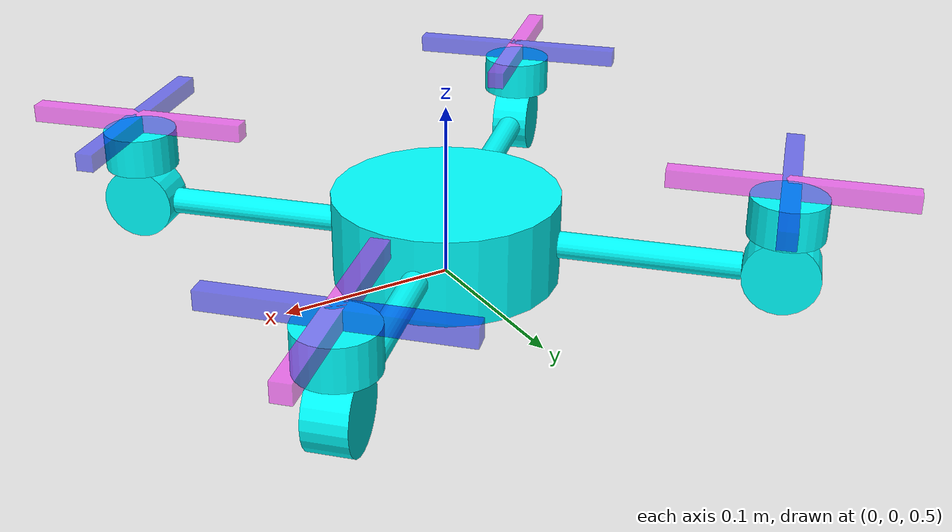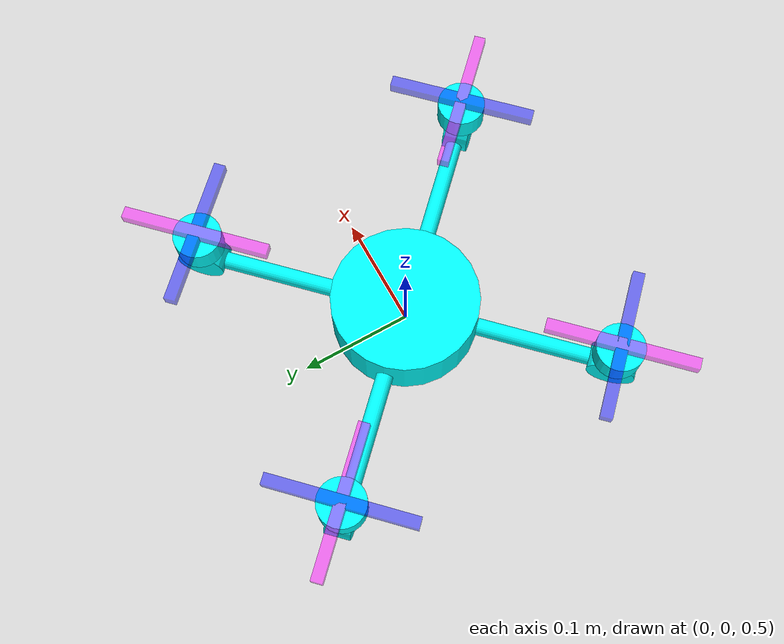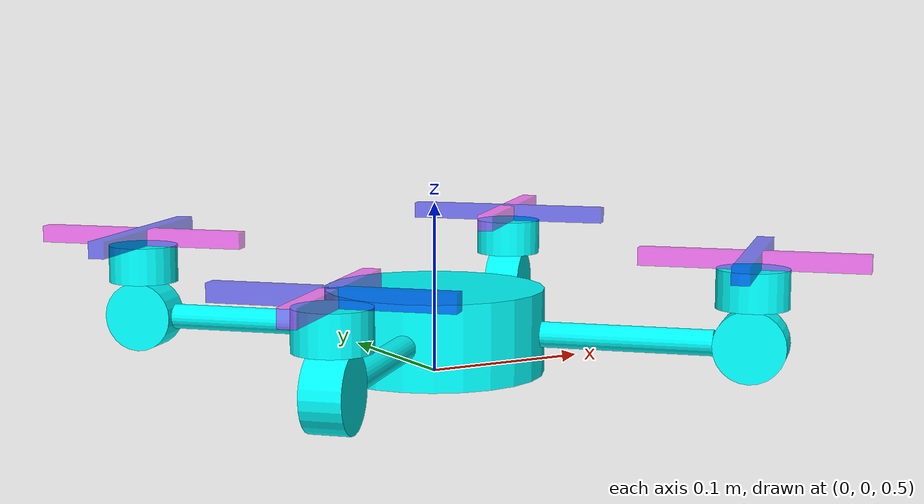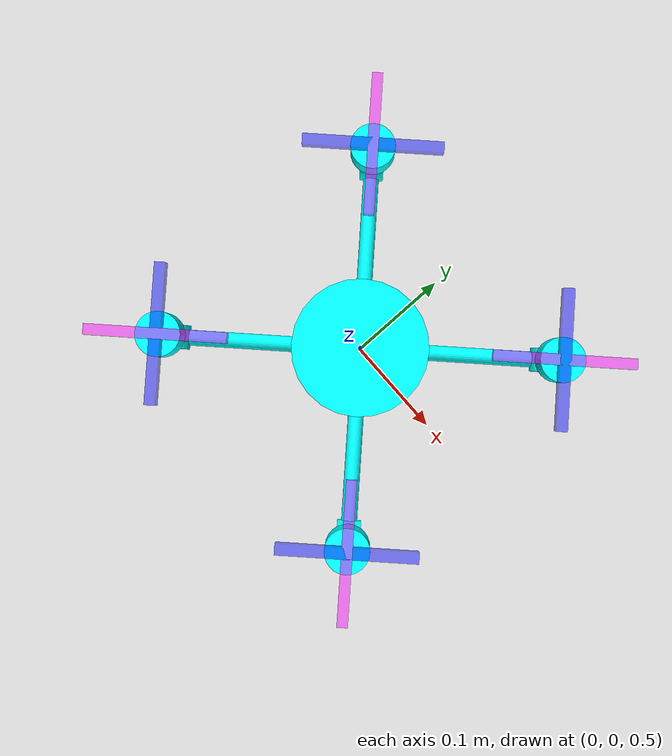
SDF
<sdf version='1.11'>
  <model name='quad'>
    <link name='base_link'>
      <inertial>
        <pose>0 0 0.52500000000000002 0 0 0</pose>
        <mass>1.6</mass>
        <inertia>
          <ixx>0.001643958333333362</ixx>
          <ixy>0</ixy>
          <ixz>0</ixz>
          <iyy>0.001643958333333362</iyy>
          <iyz>0</iyz>
          <izz>0.00274625</izz>
        </inertia>
      </inertial>
      <collision name='base_link_fixed_joint_lump__drone_link_collision'>
        <pose>0 0 0.52500000000000002 0 0 0</pose>
        <geometry>
          <cylinder>
            <length>0.050000000000000003</length>
            <radius>0.065000000000000002</radius>
          </cylinder>
        </geometry>
      </collision>
      <visual name='base_link_fixed_joint_lump__drone_link_visual'>
        <pose>0 0 0.52500000000000002 0 0 0</pose>
        <geometry>
          <cylinder>
            <length>0.050000000000000003</length>
            <radius>0.065000000000000002</radius>
          </cylinder>
        </geometry>
        <material>
          <diffuse>0 1 1 1</diffuse>
          <ambient>0 1 1 1</ambient>
        </material>
      </visual>
      <sensor name='imu_sensor' type='imu'>
        <always_on>true</always_on>
        <update_rate>250</update_rate>
        <imu>
          <angular_velocity>
            <x>
              <noise type='gaussian'>
                <mean>0</mean>
                <stddev>0.00018665000000000001</stddev>
                <dynamic_bias_stddev>3.8785000000000002e-05</dynamic_bias_stddev>
                <dynamic_bias_correlation_time>1000</dynamic_bias_correlation_time>
              </noise>
            </x>
            <y>
              <noise type='gaussian'>
                <mean>0</mean>
                <stddev>0.00018665000000000001</stddev>
                <dynamic_bias_stddev>3.8785000000000002e-05</dynamic_bias_stddev>
                <dynamic_bias_correlation_time>1000</dynamic_bias_correlation_time>
              </noise>
            </y>
            <z>
              <noise type='gaussian'>
                <mean>0</mean>
                <stddev>0.00018665000000000001</stddev>
                <dynamic_bias_stddev>3.8785000000000002e-05</dynamic_bias_stddev>
                <dynamic_bias_correlation_time>1000</dynamic_bias_correlation_time>
              </noise>
            </z>
          </angular_velocity>
          <linear_acceleration>
            <x>
              <noise type='gaussian'>
                <mean>0</mean>
                <stddev>0.0018600000000000001</stddev>
                <dynamic_bias_stddev>0.0060000000000000001</dynamic_bias_stddev>
                <dynamic_bias_correlation_time>300</dynamic_bias_correlation_time>
              </noise>
            </x>
            <y>
              <noise type='gaussian'>
                <mean>0</mean>
                <stddev>0.0018600000000000001</stddev>
                <dynamic_bias_stddev>0.0060000000000000001</dynamic_bias_stddev>
                <dynamic_bias_correlation_time>300</dynamic_bias_correlation_time>
              </noise>
            </y>
            <z>
              <noise type='gaussian'>
                <mean>0</mean>
                <stddev>0.0018600000000000001</stddev>
                <dynamic_bias_stddev>0.0060000000000000001</dynamic_bias_stddev>
                <dynamic_bias_correlation_time>300</dynamic_bias_correlation_time>
              </noise>
            </z>
          </linear_acceleration>
        </imu>
        <pose>0 0 0.5 0 0 0</pose>
      </sensor>
      <sensor name='air_pressure_sensor' type='air_pressure'>
        <always_on>true</always_on>
        <update_rate>50</update_rate>
        <air_pressure>
          <pressure>
            <noise type='gaussian'>
              <mean>0</mean>
              <stddev>0.01</stddev>
            </noise>
          </pressure>
        </air_pressure>
        <pose>0 0 0.5 0 0 0</pose>
      </sensor>
      <sensor name='navsat_sensor' type='navsat'>
        <always_on>true</always_on>
        <update_rate>30</update_rate>
        <pose>0 0 0.5 0 0 0</pose>
        <gps/>
      </sensor>
    </link>
    <joint name='stickJoint0' type='revolute'>
      <pose relative_to='base_link'>0.045961940765000001 0.045961940765000001 0.52500000000000002 -2.3561944901923448 -1.5707963267948966 0</pose>
      <parent>base_link</parent>
      <child>stick_link0</child>
      <axis>
        <xyz>0 0 1</xyz>
        <limit>
          <lower>-inf</lower>
          <upper>inf</upper>
        </limit>
        <dynamics>
          <damping>1</damping>
          <friction>0</friction>
          <spring_reference>0</spring_reference>
          <spring_stiffness>0</spring_stiffness>
        </dynamics>
      </axis>
    </joint>
    <link name='stick_link0'>
      <pose relative_to='stickJoint0'>0 0 0 0 0 0</pose>
      <inertial>
        <pose>0 0 0.050000000000000003 0 0 0</pose>
        <mass>0.059999999999999998</mass>
        <inertia>
          <ixx>5.0843750000000013e-05</ixx>
          <ixy>0</ixy>
          <ixz>0</ixz>
          <iyy>5.0843750000000013e-05</iyy>
          <iyz>0</iyz>
          <izz>1.6874999999999999e-06</izz>
        </inertia>
      </inertial>
      <collision name='stick_link0_collision'>
        <pose>0 0 0.050000000000000003 0 0 0</pose>
        <geometry>
          <cylinder>
            <length>0.10000000000000001</length>
            <radius>0.0074999999999999997</radius>
          </cylinder>
        </geometry>
      </collision>
      <visual name='stick_link0_visual'>
        <pose>0 0 0.050000000000000003 0 0 0</pose>
        <geometry>
          <cylinder>
            <length>0.10000000000000001</length>
            <radius>0.0074999999999999997</radius>
          </cylinder>
        </geometry>
        <material>
          <diffuse>0 1 1 1</diffuse>
          <ambient>0 1 1 1</ambient>
        </material>
      </visual>
    </link>
    <joint name='servoJoint0' type='revolute'>
      <pose relative_to='stick_link0'>0 0 0.121 1.5707963267948959 0 0</pose>
      <parent>stick_link0</parent>
      <child>servo_link0</child>
      <axis>
        <xyz>0 0 1</xyz>
        <limit>
          <lower>-inf</lower>
          <upper>inf</upper>
        </limit>
        <dynamics>
          <damping>1</damping>
          <friction>0</friction>
          <spring_reference>0</spring_reference>
          <spring_stiffness>0</spring_stiffness>
        </dynamics>
      </axis>
    </joint>
    <link name='servo_link0'>
      <pose relative_to='servoJoint0'>0 0 0 0 0 0</pose>
      <inertial>
        <pose>0 0 0 0 0 0</pose>
        <mass>0.10000000000000001</mass>
        <inertia>
          <ixx>1.524375e-05</ixx>
          <ixy>0</ixy>
          <ixz>0</ixz>
          <iyy>1.524375e-05</iyy>
          <iyz>0</iyz>
          <izz>2.2050000000000001e-05</izz>
        </inertia>
      </inertial>
      <collision name='servo_link0_collision'>
        <pose>0 0 0 0 0 0</pose>
        <geometry>
          <cylinder>
            <length>0.022499999999999999</length>
            <radius>0.021000000000000001</radius>
          </cylinder>
        </geometry>
      </collision>
      <visual name='servo_link0_visual'>
        <pose>0 0 0 0 0 0</pose>
        <geometry>
          <cylinder>
            <length>0.022499999999999999</length>
            <radius>0.021000000000000001</radius>
          </cylinder>
        </geometry>
        <material>
          <diffuse>0 1 1 1</diffuse>
          <ambient>0 1 1 1</ambient>
        </material>
      </visual>
    </link>
    <joint name='rotorJoint0' type='revolute'>
      <pose relative_to='servo_link0'>0.021000000000000001 0 0 0 1.5707963267948966 0</pose>
      <parent>servo_link0</parent>
      <child>rotor_link0</child>
      <axis>
        <xyz>0 0 1</xyz>
        <limit>
          <lower>-inf</lower>
          <upper>inf</upper>
        </limit>
        <dynamics>
          <damping>1</damping>
          <friction>0</friction>
          <spring_reference>0</spring_reference>
          <spring_stiffness>0</spring_stiffness>
        </dynamics>
      </axis>
    </joint>
    <link name='rotor_link0'>
      <pose relative_to='rotorJoint0'>0 0 0 0 0 0</pose>
      <inertial>
        <pose>0 0 0.01125 0 0 0</pose>
        <mass>0.040000000000000001</mass>
        <inertia>
          <ixx>6.0974999999999996e-06</ixx>
          <ixy>0</ixy>
          <ixz>0</ixz>
          <iyy>6.0974999999999996e-06</iyy>
          <iyz>0</iyz>
          <izz>8.8200000000000003e-06</izz>
        </inertia>
      </inertial>
      <collision name='rotor_link0_collision'>
        <pose>0 0 0.01125 0 0 0</pose>
        <geometry>
          <cylinder>
            <length>0.022499999999999999</length>
            <radius>0.021000000000000001</radius>
          </cylinder>
        </geometry>
      </collision>
      <visual name='rotor_link0_visual'>
        <pose>0 0 0.01125 0 0 0</pose>
        <geometry>
          <cylinder>
            <length>0.022499999999999999</length>
            <radius>0.021000000000000001</radius>
          </cylinder>
        </geometry>
        <material>
          <diffuse>0 1 1 1</diffuse>
          <ambient>0 1 1 1</ambient>
        </material>
      </visual>
      <visual name='rotor_link0_visual_1'>
        <pose>0 0 0.0275 0 0 0</pose>
        <geometry>
          <box>
            <size>0.01 0.13 0.01</size>
          </box>
        </geometry>
        <material>
          <diffuse>1 0 1 0.5</diffuse>
          <ambient>1 0 1 0.5</ambient>
        </material>
      </visual>
      <visual name='rotor_link0_visual_2'>
        <pose>0 0 0.0275 0 0 0</pose>
        <geometry>
          <box>
            <size>0.13 0.01 0.01</size>
          </box>
        </geometry>
        <material>
          <diffuse>0 0 1 0.5</diffuse>
          <ambient>0 0 1 0.5</ambient>
        </material>
      </visual>
    </link>
    <joint name='stickJoint1' type='revolute'>
      <pose relative_to='base_link'>-0.045961940765000001 -0.045961940765000001 0.52500000000000002 0.78539816339744839 -1.5707963267948966 0</pose>
      <parent>base_link</parent>
      <child>stick_link1</child>
      <axis>
        <xyz>0 0 1</xyz>
        <limit>
          <lower>-inf</lower>
          <upper>inf</upper>
        </limit>
        <dynamics>
          <damping>1</damping>
          <friction>0</friction>
          <spring_reference>0</spring_reference>
          <spring_stiffness>0</spring_stiffness>
        </dynamics>
      </axis>
    </joint>
    <link name='stick_link1'>
      <pose relative_to='stickJoint1'>0 0 0 0 0 0</pose>
      <inertial>
        <pose>0 0 0.050000000000000003 0 0 0</pose>
        <mass>0.059999999999999998</mass>
        <inertia>
          <ixx>5.0843750000000013e-05</ixx>
          <ixy>0</ixy>
          <ixz>0</ixz>
          <iyy>5.0843750000000013e-05</iyy>
          <iyz>0</iyz>
          <izz>1.6874999999999999e-06</izz>
        </inertia>
      </inertial>
      <collision name='stick_link1_collision'>
        <pose>0 0 0.050000000000000003 0 0 0</pose>
        <geometry>
          <cylinder>
            <length>0.10000000000000001</length>
            <radius>0.0074999999999999997</radius>
          </cylinder>
        </geometry>
      </collision>
      <visual name='stick_link1_visual'>
        <pose>0 0 0.050000000000000003 0 0 0</pose>
        <geometry>
          <cylinder>
            <length>0.10000000000000001</length>
            <radius>0.0074999999999999997</radius>
          </cylinder>
        </geometry>
        <material>
          <diffuse>0 1 1 1</diffuse>
          <ambient>0 1 1 1</ambient>
        </material>
      </visual>
    </link>
    <joint name='servoJoint1' type='revolute'>
      <pose relative_to='stick_link1'>0 0 0.121 1.5707963267948959 0 0</pose>
      <parent>stick_link1</parent>
      <child>servo_link1</child>
      <axis>
        <xyz>0 0 1</xyz>
        <limit>
          <lower>-inf</lower>
          <upper>inf</upper>
        </limit>
        <dynamics>
          <damping>1</damping>
          <friction>0</friction>
          <spring_reference>0</spring_reference>
          <spring_stiffness>0</spring_stiffness>
        </dynamics>
      </axis>
    </joint>
    <link name='servo_link1'>
      <pose relative_to='servoJoint1'>0 0 0 0 0 0</pose>
      <inertial>
        <pose>0 0 0 0 0 0</pose>
        <mass>0.10000000000000001</mass>
        <inertia>
          <ixx>1.524375e-05</ixx>
          <ixy>0</ixy>
          <ixz>0</ixz>
          <iyy>1.524375e-05</iyy>
          <iyz>0</iyz>
          <izz>2.2050000000000001e-05</izz>
        </inertia>
      </inertial>
      <collision name='servo_link1_collision'>
        <pose>0 0 0 0 0 0</pose>
        <geometry>
          <cylinder>
            <length>0.022499999999999999</length>
            <radius>0.021000000000000001</radius>
          </cylinder>
        </geometry>
      </collision>
      <visual name='servo_link1_visual'>
        <pose>0 0 0 0 0 0</pose>
        <geometry>
          <cylinder>
            <length>0.022499999999999999</length>
            <radius>0.021000000000000001</radius>
          </cylinder>
        </geometry>
        <material>
          <diffuse>0 1 1 1</diffuse>
          <ambient>0 1 1 1</ambient>
        </material>
      </visual>
    </link>
    <joint name='rotorJoint1' type='revolute'>
      <pose relative_to='servo_link1'>0.021000000000000001 0 0 0 1.5707963267948966 0</pose>
      <parent>servo_link1</parent>
      <child>rotor_link1</child>
      <axis>
        <xyz>0 0 1</xyz>
        <limit>
          <lower>-inf</lower>
          <upper>inf</upper>
        </limit>
        <dynamics>
          <damping>1</damping>
          <friction>0</friction>
          <spring_reference>0</spring_reference>
          <spring_stiffness>0</spring_stiffness>
        </dynamics>
      </axis>
    </joint>
    <link name='rotor_link1'>
      <pose relative_to='rotorJoint1'>0 0 0 0 0 0</pose>
      <inertial>
        <pose>0 0 0.01125 0 0 0</pose>
        <mass>0.040000000000000001</mass>
        <inertia>
          <ixx>6.0974999999999996e-06</ixx>
          <ixy>0</ixy>
          <ixz>0</ixz>
          <iyy>6.0974999999999996e-06</iyy>
          <iyz>0</iyz>
          <izz>8.8200000000000003e-06</izz>
        </inertia>
      </inertial>
      <collision name='rotor_link1_collision'>
        <pose>0 0 0.01125 0 0 0</pose>
        <geometry>
          <cylinder>
            <length>0.022499999999999999</length>
            <radius>0.021000000000000001</radius>
          </cylinder>
        </geometry>
      </collision>
      <visual name='rotor_link1_visual'>
        <pose>0 0 0.01125 0 0 0</pose>
        <geometry>
          <cylinder>
            <length>0.022499999999999999</length>
            <radius>0.021000000000000001</radius>
          </cylinder>
        </geometry>
        <material>
          <diffuse>0 1 1 1</diffuse>
          <ambient>0 1 1 1</ambient>
        </material>
      </visual>
      <visual name='rotor_link1_visual_1'>
        <pose>0 0 0.0275 0 0 0</pose>
        <geometry>
          <box>
            <size>0.01 0.13 0.01</size>
          </box>
        </geometry>
        <material>
          <diffuse>1 0 1 0.5</diffuse>
          <ambient>1 0 1 0.5</ambient>
        </material>
      </visual>
      <visual name='rotor_link1_visual_2'>
        <pose>0 0 0.0275 0 0 0</pose>
        <geometry>
          <box>
            <size>0.13 0.01 0.01</size>
          </box>
        </geometry>
        <material>
          <diffuse>0 0 1 0.5</diffuse>
          <ambient>0 0 1 0.5</ambient>
        </material>
      </visual>
    </link>
    <joint name='stickJoint2' type='revolute'>
      <pose relative_to='base_link'>-0.045961940765000001 0.045961940765000001 0.52500000000000002 -0.78539816339744839 -1.5707963267948966 0</pose>
      <parent>base_link</parent>
      <child>stick_link2</child>
      <axis>
        <xyz>0 0 1</xyz>
        <limit>
          <lower>-inf</lower>
          <upper>inf</upper>
        </limit>
        <dynamics>
          <damping>1</damping>
          <friction>0</friction>
          <spring_reference>0</spring_reference>
          <spring_stiffness>0</spring_stiffness>
        </dynamics>
      </axis>
    </joint>
    <link name='stick_link2'>
      <pose relative_to='stickJoint2'>0 0 0 0 0 0</pose>
      <inertial>
        <pose>0 0 0.050000000000000003 0 0 0</pose>
        <mass>0.059999999999999998</mass>
        <inertia>
          <ixx>5.0843750000000013e-05</ixx>
          <ixy>0</ixy>
          <ixz>0</ixz>
          <iyy>5.0843750000000013e-05</iyy>
          <iyz>0</iyz>
          <izz>1.6874999999999999e-06</izz>
        </inertia>
      </inertial>
      <collision name='stick_link2_collision'>
        <pose>0 0 0.050000000000000003 0 0 0</pose>
        <geometry>
          <cylinder>
            <length>0.10000000000000001</length>
            <radius>0.0074999999999999997</radius>
          </cylinder>
        </geometry>
      </collision>
      <visual name='stick_link2_visual'>
        <pose>0 0 0.050000000000000003 0 0 0</pose>
        <geometry>
          <cylinder>
            <length>0.10000000000000001</length>
            <radius>0.0074999999999999997</radius>
          </cylinder>
        </geometry>
        <material>
          <diffuse>0 1 1 1</diffuse>
          <ambient>0 1 1 1</ambient>
        </material>
      </visual>
    </link>
    <joint name='servoJoint2' type='revolute'>
      <pose relative_to='stick_link2'>0 0 0.121 1.5707963267948959 0 0</pose>
      <parent>stick_link2</parent>
      <child>servo_link2</child>
      <axis>
        <xyz>0 0 1</xyz>
        <limit>
          <lower>-inf</lower>
          <upper>inf</upper>
        </limit>
        <dynamics>
          <damping>1</damping>
          <friction>0</friction>
          <spring_reference>0</spring_reference>
          <spring_stiffness>0</spring_stiffness>
        </dynamics>
      </axis>
    </joint>
    <link name='servo_link2'>
      <pose relative_to='servoJoint2'>0 0 0 0 0 0</pose>
      <inertial>
        <pose>0 0 0 0 0 0</pose>
        <mass>0.10000000000000001</mass>
        <inertia>
          <ixx>1.524375e-05</ixx>
          <ixy>0</ixy>
          <ixz>0</ixz>
          <iyy>1.524375e-05</iyy>
          <iyz>0</iyz>
          <izz>2.2050000000000001e-05</izz>
        </inertia>
      </inertial>
      <collision name='servo_link2_collision'>
        <pose>0 0 0 0 0 0</pose>
        <geometry>
          <cylinder>
            <length>0.022499999999999999</length>
            <radius>0.021000000000000001</radius>
          </cylinder>
        </geometry>
      </collision>
      <visual name='servo_link2_visual'>
        <pose>0 0 0 0 0 0</pose>
        <geometry>
          <cylinder>
            <length>0.022499999999999999</length>
            <radius>0.021000000000000001</radius>
          </cylinder>
        </geometry>
        <material>
          <diffuse>0 1 1 1</diffuse>
          <ambient>0 1 1 1</ambient>
        </material>
      </visual>
    </link>
    <joint name='rotorJoint2' type='revolute'>
      <pose relative_to='servo_link2'>0.021000000000000001 0 0 0 1.5707963267948966 0</pose>
      <parent>servo_link2</parent>
      <child>rotor_link2</child>
      <axis>
        <xyz>0 0 1</xyz>
        <limit>
          <lower>-inf</lower>
          <upper>inf</upper>
        </limit>
        <dynamics>
          <damping>1</damping>
          <friction>0</friction>
          <spring_reference>0</spring_reference>
          <spring_stiffness>0</spring_stiffness>
        </dynamics>
      </axis>
    </joint>
    <link name='rotor_link2'>
      <pose relative_to='rotorJoint2'>0 0 0 0 0 0</pose>
      <inertial>
        <pose>0 0 0.01125 0 0 0</pose>
        <mass>0.040000000000000001</mass>
        <inertia>
          <ixx>6.0974999999999996e-06</ixx>
          <ixy>0</ixy>
          <ixz>0</ixz>
          <iyy>6.0974999999999996e-06</iyy>
          <iyz>0</iyz>
          <izz>8.8200000000000003e-06</izz>
        </inertia>
      </inertial>
      <collision name='rotor_link2_collision'>
        <pose>0 0 0.01125 0 0 0</pose>
        <geometry>
          <cylinder>
            <length>0.022499999999999999</length>
            <radius>0.021000000000000001</radius>
          </cylinder>
        </geometry>
      </collision>
      <visual name='rotor_link2_visual'>
        <pose>0 0 0.01125 0 0 0</pose>
        <geometry>
          <cylinder>
            <length>0.022499999999999999</length>
            <radius>0.021000000000000001</radius>
          </cylinder>
        </geometry>
        <material>
          <diffuse>0 1 1 1</diffuse>
          <ambient>0 1 1 1</ambient>
        </material>
      </visual>
      <visual name='rotor_link2_visual_1'>
        <pose>0 0 0.0275 0 0 0</pose>
        <geometry>
          <box>
            <size>0.01 0.13 0.01</size>
          </box>
        </geometry>
        <material>
          <diffuse>1 0 1 0.5</diffuse>
          <ambient>1 0 1 0.5</ambient>
        </material>
      </visual>
      <visual name='rotor_link2_visual_2'>
        <pose>0 0 0.0275 0 0 0</pose>
        <geometry>
          <box>
            <size>0.13 0.01 0.01</size>
          </box>
        </geometry>
        <material>
          <diffuse>0 0 1 0.5</diffuse>
          <ambient>0 0 1 0.5</ambient>
        </material>
      </visual>
    </link>
    <joint name='stickJoint3' type='revolute'>
      <pose relative_to='base_link'>0.045961940765000001 -0.045961940765000001 0.52500000000000002 2.3561944901923448 -1.5707963267948966 0</pose>
      <parent>base_link</parent>
      <child>stick_link3</child>
      <axis>
        <xyz>0 0 1</xyz>
        <limit>
          <lower>-inf</lower>
          <upper>inf</upper>
        </limit>
        <dynamics>
          <damping>1</damping>
          <friction>0</friction>
          <spring_reference>0</spring_reference>
          <spring_stiffness>0</spring_stiffness>
        </dynamics>
      </axis>
    </joint>
    <link name='stick_link3'>
      <pose relative_to='stickJoint3'>0 0 0 0 0 0</pose>
      <inertial>
        <pose>0 0 0.050000000000000003 0 0 0</pose>
        <mass>0.059999999999999998</mass>
        <inertia>
          <ixx>5.0843750000000013e-05</ixx>
          <ixy>0</ixy>
          <ixz>0</ixz>
          <iyy>5.0843750000000013e-05</iyy>
          <iyz>0</iyz>
          <izz>1.6874999999999999e-06</izz>
        </inertia>
      </inertial>
      <collision name='stick_link3_collision'>
        <pose>0 0 0.050000000000000003 0 0 0</pose>
        <geometry>
          <cylinder>
            <length>0.10000000000000001</length>
            <radius>0.0074999999999999997</radius>
          </cylinder>
        </geometry>
      </collision>
      <visual name='stick_link3_visual'>
        <pose>0 0 0.050000000000000003 0 0 0</pose>
        <geometry>
          <cylinder>
            <length>0.10000000000000001</length>
            <radius>0.0074999999999999997</radius>
          </cylinder>
        </geometry>
        <material>
          <diffuse>0 1 1 1</diffuse>
          <ambient>0 1 1 1</ambient>
        </material>
      </visual>
    </link>
    <joint name='servoJoint3' type='revolute'>
      <pose relative_to='stick_link3'>0 0 0.121 1.5707963267948959 0 0</pose>
      <parent>stick_link3</parent>
      <child>servo_link3</child>
      <axis>
        <xyz>0 0 1</xyz>
        <limit>
          <lower>-inf</lower>
          <upper>inf</upper>
        </limit>
        <dynamics>
          <damping>1</damping>
          <friction>0</friction>
          <spring_reference>0</spring_reference>
          <spring_stiffness>0</spring_stiffness>
        </dynamics>
      </axis>
    </joint>
    <link name='servo_link3'>
      <pose relative_to='servoJoint3'>0 0 0 0 0 0</pose>
      <inertial>
        <pose>0 0 0 0 0 0</pose>
        <mass>0.10000000000000001</mass>
        <inertia>
          <ixx>1.524375e-05</ixx>
          <ixy>0</ixy>
          <ixz>0</ixz>
          <iyy>1.524375e-05</iyy>
          <iyz>0</iyz>
          <izz>2.2050000000000001e-05</izz>
        </inertia>
      </inertial>
      <collision name='servo_link3_collision'>
        <pose>0 0 0 0 0 0</pose>
        <geometry>
          <cylinder>
            <length>0.022499999999999999</length>
            <radius>0.021000000000000001</radius>
          </cylinder>
        </geometry>
      </collision>
      <visual name='servo_link3_visual'>
        <pose>0 0 0 0 0 0</pose>
        <geometry>
          <cylinder>
            <length>0.022499999999999999</length>
            <radius>0.021000000000000001</radius>
          </cylinder>
        </geometry>
        <material>
          <diffuse>0 1 1 1</diffuse>
          <ambient>0 1 1 1</ambient>
        </material>
      </visual>
    </link>
    <joint name='rotorJoint3' type='revolute'>
      <pose relative_to='servo_link3'>0.021000000000000001 0 0 0 1.5707963267948966 0</pose>
      <parent>servo_link3</parent>
      <child>rotor_link3</child>
      <axis>
        <xyz>0 0 1</xyz>
        <limit>
          <lower>-inf</lower>
          <upper>inf</upper>
        </limit>
        <dynamics>
          <damping>1</damping>
          <friction>0</friction>
          <spring_reference>0</spring_reference>
          <spring_stiffness>0</spring_stiffness>
        </dynamics>
      </axis>
    </joint>
    <link name='rotor_link3'>
      <pose relative_to='rotorJoint3'>0 0 0 0 0 0</pose>
      <inertial>
        <pose>0 0 0.01125 0 0 0</pose>
        <mass>0.040000000000000001</mass>
        <inertia>
          <ixx>6.0974999999999996e-06</ixx>
          <ixy>0</ixy>
          <ixz>0</ixz>
          <iyy>6.0974999999999996e-06</iyy>
          <iyz>0</iyz>
          <izz>8.8200000000000003e-06</izz>
        </inertia>
      </inertial>
      <collision name='rotor_link3_collision'>
        <pose>0 0 0.01125 0 0 0</pose>
        <geometry>
          <cylinder>
            <length>0.022499999999999999</length>
            <radius>0.021000000000000001</radius>
          </cylinder>
        </geometry>
      </collision>
      <visual name='rotor_link3_visual'>
        <pose>0 0 0.01125 0 0 0</pose>
        <geometry>
          <cylinder>
            <length>0.022499999999999999</length>
            <radius>0.021000000000000001</radius>
          </cylinder>
        </geometry>
        <material>
          <diffuse>0 1 1 1</diffuse>
          <ambient>0 1 1 1</ambient>
        </material>
      </visual>
      <visual name='rotor_link3_visual_1'>
        <pose>0 0 0.0275 0 0 0</pose>
        <geometry>
          <box>
            <size>0.01 0.13 0.01</size>
          </box>
        </geometry>
        <material>
          <diffuse>1 0 1 0.5</diffuse>
          <ambient>1 0 1 0.5</ambient>
        </material>
      </visual>
      <visual name='rotor_link3_visual_2'>
        <pose>0 0 0.0275 0 0 0</pose>
        <geometry>
          <box>
            <size>0.13 0.01 0.01</size>
          </box>
        </geometry>
        <material>
          <diffuse>0 0 1 0.5</diffuse>
          <ambient>0 0 1 0.5</ambient>
        </material>
      </visual>
    </link>
    <plugin name='gz::sim::systems::MulticopterMotorModel' filename='gz-sim-multicopter-motor-model-system'>
      <jointName>rotorJoint0</jointName>
      <linkName>rotor_link0</linkName>
      <turningDirection>cw</turningDirection>
      <timeConstantUp>0.0125</timeConstantUp>
      <timeConstantDown>0.025</timeConstantDown>
      <maxRotVelocity>1000.0</maxRotVelocity>
      <motorConstant>1.5e-05</motorConstant>
      <momentConstant>0.1</momentConstant>
      <commandSubTopic>command/motor_speed</commandSubTopic>
      <motorNumber>0</motorNumber>
      <rotorDragCoefficient>8.06428e-05</rotorDragCoefficient>
      <rollingMomentCoefficient>8.7e-06</rollingMomentCoefficient>
      <rotorVelocitySlowdownSim>10</rotorVelocitySlowdownSim>
      <motorType>velocity</motorType>
    </plugin>
    <plugin name='gz::sim::systems::MulticopterMotorModel' filename='gz-sim-multicopter-motor-model-system'>
      <jointName>rotorJoint1</jointName>
      <linkName>rotor_link1</linkName>
      <turningDirection>cw</turningDirection>
      <timeConstantUp>0.0125</timeConstantUp>
      <timeConstantDown>0.025</timeConstantDown>
      <maxRotVelocity>1000.0</maxRotVelocity>
      <motorConstant>1.5e-05</motorConstant>
      <momentConstant>0.1</momentConstant>
      <commandSubTopic>command/motor_speed</commandSubTopic>
      <motorNumber>1</motorNumber>
      <rotorDragCoefficient>8.06428e-05</rotorDragCoefficient>
      <rollingMomentCoefficient>8.7e-06</rollingMomentCoefficient>
      <rotorVelocitySlowdownSim>10</rotorVelocitySlowdownSim>
      <motorType>velocity</motorType>
    </plugin>
    <plugin name='gz::sim::systems::MulticopterMotorModel' filename='gz-sim-multicopter-motor-model-system'>
      <jointName>rotorJoint2</jointName>
      <linkName>rotor_link2</linkName>
      <turningDirection>ccw</turningDirection>
      <timeConstantUp>0.0125</timeConstantUp>
      <timeConstantDown>0.025</timeConstantDown>
      <maxRotVelocity>1000.0</maxRotVelocity>
      <motorConstant>1.5e-05</motorConstant>
      <momentConstant>0.1</momentConstant>
      <commandSubTopic>command/motor_speed</commandSubTopic>
      <motorNumber>2</motorNumber>
      <rotorDragCoefficient>8.06428e-05</rotorDragCoefficient>
      <rollingMomentCoefficient>8.7e-06</rollingMomentCoefficient>
      <rotorVelocitySlowdownSim>10</rotorVelocitySlowdownSim>
      <motorType>velocity</motorType>
    </plugin>
    <plugin name='gz::sim::systems::MulticopterMotorModel' filename='gz-sim-multicopter-motor-model-system'>
      <jointName>rotorJoint3</jointName>
      <linkName>rotor_link3</linkName>
      <turningDirection>ccw</turningDirection>
      <timeConstantUp>0.0125</timeConstantUp>
      <timeConstantDown>0.025</timeConstantDown>
      <maxRotVelocity>1000.0</maxRotVelocity>
      <motorConstant>1.5e-05</motorConstant>
      <momentConstant>0.1</momentConstant>
      <commandSubTopic>command/motor_speed</commandSubTopic>
      <motorNumber>3</motorNumber>
      <rotorDragCoefficient>8.06428e-05</rotorDragCoefficient>
      <rollingMomentCoefficient>8.7e-06</rollingMomentCoefficient>
      <rotorVelocitySlowdownSim>10</rotorVelocitySlowdownSim>
      <motorType>velocity</motorType>
    </plugin>
    <plugin name='gz::sim::systems::JointStatePublisher' filename='gz-sim-joint-state-publisher-system'/>
    <plugin name='gz::sim::systems::JointPositionController' filename='gz-sim-joint-position-controller-system'>
      <joint_name>stickJoint0</joint_name>
      <initial_position>0</initial_position>
      <sub_topic>servo_0</sub_topic>
      <p_gain>35</p_gain>
      <d_gain>0.18</d_gain>
    </plugin>
    <plugin name='gz::sim::systems::JointPositionController' filename='gz-sim-joint-position-controller-system'>
      <joint_name>servoJoint0</joint_name>
      <initial_position>0</initial_position>
      <sub_topic>servo_4</sub_topic>
      <p_gain>35</p_gain>
      <d_gain>0.18</d_gain>
    </plugin>
    <plugin name='gz::sim::systems::JointPositionController' filename='gz-sim-joint-position-controller-system'>
      <joint_name>stickJoint1</joint_name>
      <initial_position>0</initial_position>
      <sub_topic>servo_1</sub_topic>
      <p_gain>35</p_gain>
      <d_gain>0.18</d_gain>
    </plugin>
    <plugin name='gz::sim::systems::JointPositionController' filename='gz-sim-joint-position-controller-system'>
      <joint_name>servoJoint1</joint_name>
      <initial_position>0</initial_position>
      <sub_topic>servo_5</sub_topic>
      <p_gain>35</p_gain>
      <d_gain>0.18</d_gain>
    </plugin>
    <plugin name='gz::sim::systems::JointPositionController' filename='gz-sim-joint-position-controller-system'>
      <joint_name>stickJoint2</joint_name>
      <initial_position>0</initial_position>
      <sub_topic>servo_2</sub_topic>
      <p_gain>35</p_gain>
      <d_gain>0.18</d_gain>
    </plugin>
    <plugin name='gz::sim::systems::JointPositionController' filename='gz-sim-joint-position-controller-system'>
      <joint_name>servoJoint2</joint_name>
      <initial_position>0</initial_position>
      <sub_topic>servo_6</sub_topic>
      <p_gain>35</p_gain>
      <d_gain>0.18</d_gain>
    </plugin>
    <plugin name='gz::sim::systems::JointPositionController' filename='gz-sim-joint-position-controller-system'>
      <joint_name>stickJoint3</joint_name>
      <initial_position>0</initial_position>
      <sub_topic>servo_3</sub_topic>
      <p_gain>35</p_gain>
      <d_gain>0.18</d_gain>
    </plugin>
    <plugin name='gz::sim::systems::JointPositionController' filename='gz-sim-joint-position-controller-system'>
      <joint_name>servoJoint3</joint_name>
      <initial_position>0</initial_position>
      <sub_topic>servo_7</sub_topic>
      <p_gain>35</p_gain>
      <d_gain>0.18</d_gain>
    </plugin>
    <frame name='base_joint' attached_to='base_link'>
      <pose>0 0 0.5 0 0 0</pose>
    </frame>
    <frame name='drone_link' attached_to='base_joint'>
      <pose>0 0 0 0 0 0</pose>
    </frame>
  </model>
</sdf>
